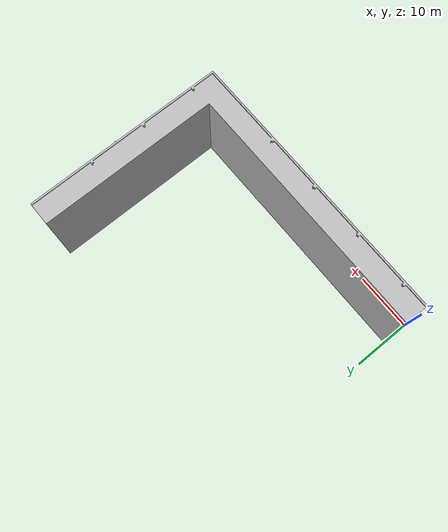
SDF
<?xml version="1.0" ?>
<sdf version="1.9">
  <model name="harbor_wall_l_shape_outer">
    <static>true</static>
    <link name="quay_link">
      <!-- Arm 1 Collision (Along X) -->
      <collision name="arm1_collision">
        <pose>25.2500 -2.2500 -7.1000 0 0 0</pose>
        <geometry>
          <box>
            <size>50.5000 4.5000 18.2000</size>
          </box>
        </geometry>
        <surface>
          <friction>
            <ode>
              <mu>0.9</mu>
              <mu2>0.9</mu2>
            </ode>
          </friction>
        </surface>
      </collision>

      <!-- Arm 2 Collision (Along Y) -->
      <collision name="arm2_collision">
        <pose>52.7500 15.2500 -7.1000 0 0 0</pose>
        <geometry>
          <box>
            <size>4.5000 39.5000 18.2000</size>
          </box>
        </geometry>
        <surface>
          <friction>
            <ode>
              <mu>0.9</mu>
              <mu2>0.9</mu2>
            </ode>
          </friction>
        </surface>
      </collision>

      <!-- High-Fidelity Photorealistic Visual Mesh -->
      <visual name="quay_visual">
        <pose>0 0 0 0 0 0</pose>
        <geometry>
          <mesh>
            <uri>model://harbor_wall_l_shape_outer/meshes/harbor_wall_l_shape_outer.obj</uri>
          </mesh>
        </geometry>
      </visual>
    </link>
  </model>
</sdf>
